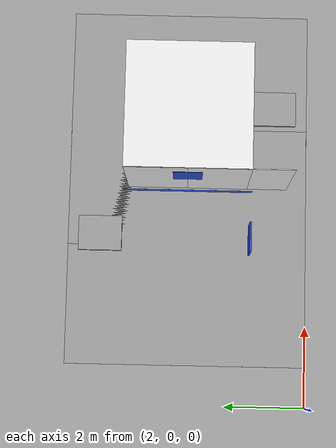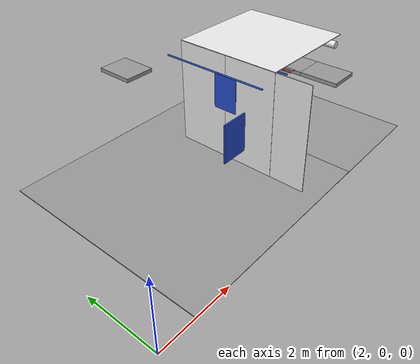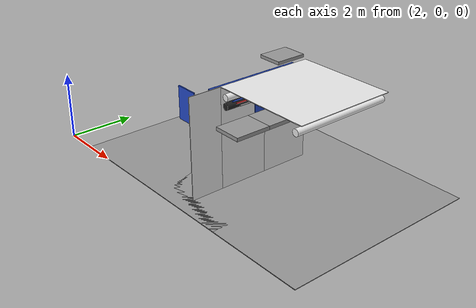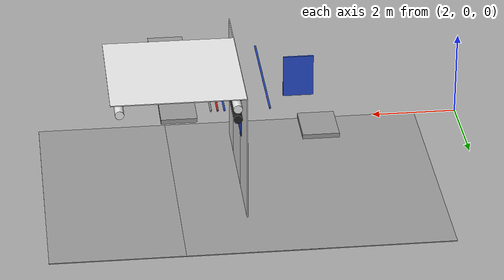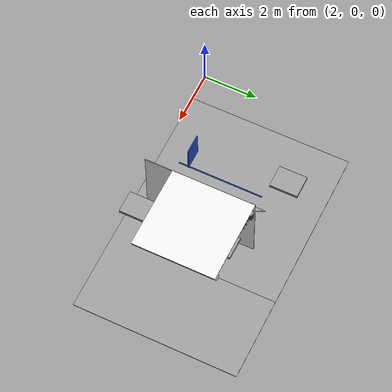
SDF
<sdf version="1.6">
 <world name="default">
  <model name="wall_front_2_1_0_3">
   <static>1</static>
   <pose>7.5 3.0 1.5 0.0 0.0 -1.57</pose>
   <link name="link">
    <collision name="collision"><geometry><box><size>3.0 0.02 3.0</size></box></geometry></collision>
    <visual name="visual">
     <material>
      <script><name>Gazebo/White</name><uri>file://media/materials/scripts/gazebo.material</uri></script>
     </material>
     <geometry><box><size>3.0 0.02 3.0</size></box></geometry>
    </visual>
   </link>
  </model>
  <model name="blue_pipe_right_1_2_1_0_3">
   <static>1</static>
   <pose>6.0 3.0 2.76 0.0 0.0 0.0</pose>
   <link name="link_0">
    <visual name="visual">
     <pose>1 0 0 1.57 0 0</pose>
     <geometry><cylinder><radius>0.02</radius><length>3.0</length></cylinder></geometry>
     <material>
      <script><uri>file://media/materials/scripts/gazebo.material</uri><name>Gazebo/Blue</name></script>
     </material>
    </visual>
    <collision name="collision">
     <pose>1 0 0 1.57 0 0</pose>
     <geometry><cylinder><radius>0.02</radius><length>3.0</length></cylinder></geometry>
    </collision>
   </link>
  </model>
  <model name="panel_2_1_0_3">
   <static>1</static>
   <pose>6.0 1.5 1.95 0.0 0.0 -1.57</pose>
   <link name="link">
    <collision name="collision"><geometry><box><size>0.04 0.7 1</size></box></geometry></collision>
    <visual name="visual">
     <material>
      <script><name>Gazebo/Blue</name><uri>file://media/materials/scripts/gazebo.material</uri></script>
     </material>
     <geometry><box><size>0.04 0.7 1</size></box></geometry>
    </visual>
   </link>
  </model>
  <model name="wall_bottom_2_1_0_3">
   <static>1</static>
   <pose>6.0 3.0 0.0 0.0 0.0 -1.57</pose>
   <link name="link">
    <collision name="collision"><geometry><box><size>6.0 6.0 0.02</size></box></geometry></collision>
    <visual name="visual">
     <material>
      <script><name>Gazebo/Grey</name><uri>file://media/materials/scripts/gazebo.material</uri></script>
     </material>
     <geometry><box><size>6.0 6.0 0.02</size></box></geometry>
    </visual>
   </link>
  </model>
  <model name="ceiling_1_2_2_0_2">
   <pose>6.0 5.0 2.55 0.0 0.0 0.0</pose>
   <link name="link_1">
    <visual name="visual">
     <geometry><box><size>0.8 1 0.1</size></box></geometry>
     <material>
      <script><uri>file://media/materials/scripts/gazebo.material</uri><name>Gazebo/Grey</name></script>
     </material>
    </visual>
    <collision name="collision"><geometry><box><size>0.8 1 0.1</size></box></geometry></collision>
   </link>
   <static>1</static>
  </model>
  <model name="wall_right_3_1_0_1">
   <static>1</static>
   <pose>7.5 3.0 1.5 0.0 0.0 4.71</pose>
   <link name="link">
    <collision name="collision"><geometry><box><size>3.0 0.02 3.0</size></box></geometry></collision>
    <visual name="visual">
     <material>
      <script><name>Gazebo/White</name><uri>file://media/materials/scripts/gazebo.material</uri></script>
     </material>
     <geometry><box><size>3.0 0.02 3.0</size></box></geometry>
    </visual>
   </link>
  </model>
  <model name="wall_top_3_1_0_1">
   <static>1</static>
   <pose>9.0 3.0 3.0 1.57 0.0 3.14</pose>
   <link name="link">
    <collision name="collision"><geometry><box><size>3.0 0.02 3.0</size></box></geometry></collision>
    <visual name="visual">
     <material>
      <script><name>Gazebo/White</name><uri>file://media/materials/scripts/gazebo.material</uri></script>
     </material>
     <geometry><box><size>3.0 0.02 3.0</size></box></geometry>
    </visual>
   </link>
  </model>
  <model name="ceiling_1_3_1_0_1">
   <pose>9.0 3.0 2.55 0.0 0.0 3.14</pose>
   <link name="link_1">
    <visual name="visual">
     <geometry><box><size>0.8 1 0.1</size></box></geometry>
     <material>
      <script><uri>file://media/materials/scripts/gazebo.material</uri><name>Gazebo/Grey</name></script>
     </material>
    </visual>
    <collision name="collision"><geometry><box><size>0.8 1 0.1</size></box></geometry></collision>
   </link>
   <static>1</static>
  </model>
  <model name="ceiling_1_3_1_1_1">
   <pose>9.0 4.0 2.55 0.0 0.0 3.14</pose>
   <link name="link_1">
    <visual name="visual">
     <geometry><box><size>0.8 1 0.1</size></box></geometry>
     <material>
      <script><uri>file://media/materials/scripts/gazebo.material</uri><name>Gazebo/Grey</name></script>
     </material>
    </visual>
    <collision name="collision"><geometry><box><size>0.8 1 0.1</size></box></geometry></collision>
   </link>
   <static>1</static>
  </model>
  <model name="ceiling_1_3_1_2_1">
   <pose>9.0 2.0 2.55 0.0 0.0 3.14</pose>
   <link name="link_1">
    <visual name="visual">
     <geometry><box><size>0.8 1 0.1</size></box></geometry>
     <material>
      <script><uri>file://media/materials/scripts/gazebo.material</uri><name>Gazebo/Grey</name></script>
     </material>
    </visual>
    <collision name="collision"><geometry><box><size>0.8 1 0.1</size></box></geometry></collision>
   </link>
   <static>1</static>
  </model>
  <model name="white_pipe_left_3_1_0_1">
   <static>1</static>
   <pose>9.0 3.0 2.76 0.0 0.0 3.14</pose>
   <link name="link_0">
    <visual name="visual">
     <pose>-1.3 0 0 1.57 0 0</pose>
     <geometry><cylinder><radius>0.1</radius><length>3.0</length></cylinder></geometry>
     <material>
      <script><uri>file://media/materials/scripts/gazebo.material</uri><name>Gazebo/White</name></script>
     </material>
    </visual>
    <collision name="collision">
     <pose>-1.3 0 0 1.57 0 0</pose>
     <geometry><cylinder><radius>0.1</radius><length>3.0</length></cylinder></geometry>
    </collision>
   </link>
  </model>
  <model name="white_pipe_right_3_1_0_1">
   <static>1</static>
   <pose>9.0 3.0 2.76 0.0 0.0 3.14</pose>
   <link name="link_0">
    <visual name="visual">
     <pose>1.3 0 0 1.57 0 0</pose>
     <geometry><cylinder><radius>0.1</radius><length>3.0</length></cylinder></geometry>
     <material>
      <script><uri>file://media/materials/scripts/gazebo.material</uri><name>Gazebo/White</name></script>
     </material>
    </visual>
    <collision name="collision">
     <pose>1.3 0 0 1.57 0 0</pose>
     <geometry><cylinder><radius>0.1</radius><length>3.0</length></cylinder></geometry>
    </collision>
   </link>
  </model>
  <model name="black_pipe_right_3_1_0_1">
   <static>1</static>
   <pose>9.0 3.0 2.76 0.0 0.0 3.14</pose>
   <link name="link_0">
    <visual name="visual">
     <pose>1.3 0 -0.25 1.57 0 0</pose>
     <geometry><cylinder><radius>0.1</radius><length>3.0</length></cylinder></geometry>
     <material>
      <script><uri>file://media/materials/scripts/gazebo.material</uri><name>Gazebo/Black</name></script>
     </material>
    </visual>
    <collision name="collision">
     <pose>1.3 0 -0.25 1.57 0 0</pose>
     <geometry><cylinder><radius>0.1</radius><length>3.0</length></cylinder></geometry>
    </collision>
   </link>
  </model>
  <model name="grey_pipe_right_3_1_0_1">
   <static>1</static>
   <pose>9.0 3.0 2.76 0.0 0.0 3.14</pose>
   <link name="link_0">
    <visual name="visual">
     <pose>0.7 0 0 1.57 0 0</pose>
     <geometry><cylinder><radius>0.02</radius><length>3.0</length></cylinder></geometry>
     <material>
      <script><uri>file://media/materials/scripts/gazebo.material</uri><name>Gazebo/Grey</name></script>
     </material>
    </visual>
    <collision name="collision">
     <pose>0.7 0 0 1.57 0 0</pose>
     <geometry><cylinder><radius>0.02</radius><length>3.0</length></cylinder></geometry>
    </collision>
   </link>
  </model>
  <model name="red_pipe_right_3_1_0_1">
   <static>1</static>
   <pose>9.0 3.0 2.76 0.0 0.0 3.14</pose>
   <link name="link_0">
    <visual name="visual">
     <pose>0.85 0 0 1.57 0 0</pose>
     <geometry><cylinder><radius>0.02</radius><length>3.0</length></cylinder></geometry>
     <material>
      <script><uri>file://media/materials/scripts/gazebo.material</uri><name>Gazebo/Red</name></script>
     </material>
    </visual>
    <collision name="collision">
     <pose>0.85 0 0 1.57 0 0</pose>
     <geometry><cylinder><radius>0.02</radius><length>3.0</length></cylinder></geometry>
    </collision>
   </link>
  </model>
  <model name="blue_pipe_right_3_1_0_1">
   <static>1</static>
   <pose>9.0 3.0 2.76 0.0 0.0 3.14</pose>
   <link name="link_0">
    <visual name="visual">
     <pose>1 0 0 1.57 0 0</pose>
     <geometry><cylinder><radius>0.02</radius><length>3.0</length></cylinder></geometry>
     <material>
      <script><uri>file://media/materials/scripts/gazebo.material</uri><name>Gazebo/Blue</name></script>
     </material>
    </visual>
    <collision name="collision">
     <pose>1 0 0 1.57 0 0</pose>
     <geometry><cylinder><radius>0.02</radius><length>3.0</length></cylinder></geometry>
    </collision>
   </link>
  </model>
  <model name="panel_3_1_0_1">
   <static>1</static>
   <pose>7.5 3.0 1.95 0.0 0.0 3.14</pose>
   <link name="link">
    <collision name="collision"><geometry><box><size>0.04 0.7 1</size></box></geometry></collision>
    <visual name="visual">
     <material>
      <script><name>Gazebo/Blue</name><uri>file://media/materials/scripts/gazebo.material</uri></script>
     </material>
     <geometry><box><size>0.04 0.7 1</size></box></geometry>
    </visual>
   </link>
  </model>
  <model name="wall_bottom_3_1_0_1">
   <static>1</static>
   <pose>9.0 3.0 0.0 0.0 0.0 3.14</pose>
   <link name="link">
    <collision name="collision"><geometry><box><size>6.0 6.0 0.02</size></box></geometry></collision>
    <visual name="visual">
     <material>
      <script><name>Gazebo/Grey</name><uri>file://media/materials/scripts/gazebo.material</uri></script>
     </material>
     <geometry><box><size>6.0 6.0 0.02</size></box></geometry>
    </visual>
   </link>
  </model>
  <model name="ceiling_1_3_0_0_3">
   <pose>9.0 1.0 2.55 0.0 0.0 3.14</pose>
   <link name="link_1">
    <visual name="visual">
     <geometry><box><size>0.8 1 0.1</size></box></geometry>
     <material>
      <script><uri>file://media/materials/scripts/gazebo.material</uri><name>Gazebo/Grey</name></script>
     </material>
    </visual>
    <collision name="collision"><geometry><box><size>0.8 1 0.1</size></box></geometry></collision>
   </link>
   <static>1</static>
  </model>
  <model name="wall_right_front_right_3_0_0_3">
   <static>1</static>
   <pose>7.5 1.0 1.5 0.0 0.0 4.71</pose>
   <link name="link">
    <collision name="collision"><geometry><box><size>1.0 0.02 3.0</size></box></geometry></collision>
    <visual name="visual">
     <material>
      <script><name>Gazebo/White</name><uri>file://media/materials/scripts/gazebo.material</uri></script>
     </material>
     <geometry><box><size>1.0 0.02 3.0</size></box></geometry>
    </visual>
   </link>
  </model>
 </world>
</sdf>
